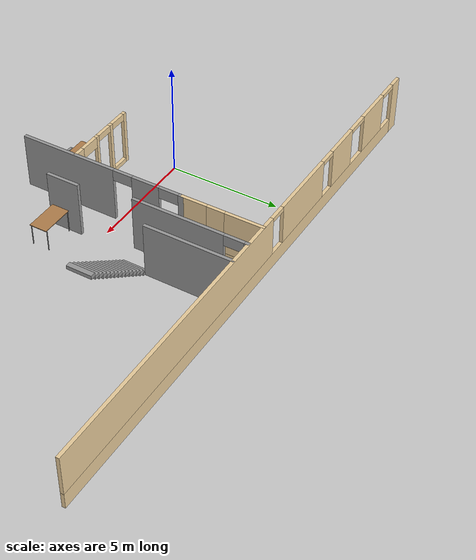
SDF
<sdf version="1.6">
 <world name="default">
  <model name="ground_plane">
   <static>1</static>
   <link name="link">
    <collision name="collision">
     <geometry><plane><normal>0 0 1</normal><size>100 100</size></plane></geometry>
     <surface>
      <contact><collide_bitmask>65535</collide_bitmask></contact>
      <friction><ode><mu>100</mu><mu2>50</mu2></ode></friction>
     </surface>
    </collision>
    <visual name="visual">
     <cast_shadows>0</cast_shadows>
     <geometry><plane><normal>0 0 1</normal><size>100 100</size></plane></geometry>
     <material>
      <script><uri>file://media/materials/scripts/gazebo.material</uri><name>Gazebo/Grey</name></script>
     </material>
    </visual>
   </link>
  </model>
  <model name="dunder_mifflin_scranton_full">
   <pose>4.5312 0.479645 0 0 -0 0</pose>
   <link name="Stairs_0">
    <visual name="Stairs_0_Visual_0">
     <pose>1.73013 1.63779 0.083333 0 -0 1.5708</pose>
     <geometry><box><size>1.12038 0.229766 0.166667</size></box></geometry>
     <material>
      <script><uri>file://media/materials/scripts/gazebo.material</uri><name>Gazebo/Grey</name></script>
      <ambient>1 1 1 1</ambient>
     </material>
     <meta><layer>0</layer></meta>
    </visual>
    <collision name="Stairs_0_Collision_0">
     <geometry><box><size>1.12038 0.229766 0.166667</size></box></geometry>
     <pose>1.73013 1.63779 0.083333 0 -0 1.5708</pose>
    </collision>
    <visual name="Stairs_0_Visual_1">
     <pose>1.9599 1.63779 0.25 0 -0 1.5708</pose>
     <geometry><box><size>1.12038 0.229766 0.166667</size></box></geometry>
     <material>
      <script><uri>file://media/materials/scripts/gazebo.material</uri><name>Gazebo/Grey</name></script>
      <ambient>1 1 1 1</ambient>
     </material>
     <meta><layer>0</layer></meta>
    </visual>
    <collision name="Stairs_0_Collision_1">
     <geometry><box><size>1.12038 0.229766 0.166667</size></box></geometry>
     <pose>1.9599 1.63779 0.25 0 -0 1.5708</pose>
    </collision>
    <visual name="Stairs_0_Visual_2">
     <pose>2.18967 1.63779 0.416667 0 -0 1.5708</pose>
     <geometry><box><size>1.12038 0.229766 0.166667</size></box></geometry>
     <material>
      <script><uri>file://media/materials/scripts/gazebo.material</uri><name>Gazebo/Grey</name></script>
      <ambient>1 1 1 1</ambient>
     </material>
     <meta><layer>0</layer></meta>
    </visual>
    <collision name="Stairs_0_Collision_2">
     <geometry><box><size>1.12038 0.229766 0.166667</size></box></geometry>
     <pose>2.18967 1.63779 0.416667 0 -0 1.5708</pose>
    </collision>
    <visual name="Stairs_0_Visual_3">
     <pose>2.41944 1.63779 0.583333 0 -0 1.5708</pose>
     <geometry><box><size>1.12038 0.229766 0.166667</size></box></geometry>
     <material>
      <script><uri>file://media/materials/scripts/gazebo.material</uri><name>Gazebo/Grey</name></script>
      <ambient>1 1 1 1</ambient>
     </material>
     <meta><layer>0</layer></meta>
    </visual>
    <collision name="Stairs_0_Collision_3">
     <geometry><box><size>1.12038 0.229766 0.166667</size></box></geometry>
     <pose>2.41944 1.63779 0.583333 0 -0 1.5708</pose>
    </collision>
    <visual name="Stairs_0_Visual_4">
     <pose>2.6492 1.63779 0.75 0 -0 1.5708</pose>
     <geometry><box><size>1.12038 0.229766 0.166667</size></box></geometry>
     <material>
      <script><uri>file://media/materials/scripts/gazebo.material</uri><name>Gazebo/Grey</name></script>
      <ambient>1 1 1 1</ambient>
     </material>
     <meta><layer>0</layer></meta>
    </visual>
    <collision name="Stairs_0_Collision_4">
     <geometry><box><size>1.12038 0.229766 0.166667</size></box></geometry>
     <pose>2.6492 1.63779 0.75 0 -0 1.5708</pose>
    </collision>
    <visual name="Stairs_0_Visual_5">
     <pose>2.87897 1.63779 0.916667 0 -0 1.5708</pose>
     <geometry><box><size>1.12038 0.229766 0.166667</size></box></geometry>
     <material>
      <script><uri>file://media/materials/scripts/gazebo.material</uri><name>Gazebo/Grey</name></script>
      <ambient>1 1 1 1</ambient>
     </material>
     <meta><layer>0</layer></meta>
    </visual>
    <collision name="Stairs_0_Collision_5">
     <geometry><box><size>1.12038 0.229766 0.166667</size></box></geometry>
     <pose>2.87897 1.63779 0.916667 0 -0 1.5708</pose>
    </collision>
    <visual name="Stairs_0_Visual_6">
     <pose>3.10873 1.63779 1.08333 0 -0 1.5708</pose>
     <geometry><box><size>1.12038 0.229766 0.166667</size></box></geometry>
     <material>
      <script><uri>file://media/materials/scripts/gazebo.material</uri><name>Gazebo/Grey</name></script>
      <ambient>1 1 1 1</ambient>
     </material>
     <meta><layer>0</layer></meta>
    </visual>
    <collision name="Stairs_0_Collision_6">
     <geometry><box><size>1.12038 0.229766 0.166667</size></box></geometry>
     <pose>3.10873 1.63779 1.08333 0 -0 1.5708</pose>
    </collision>
    <visual name="Stairs_0_Visual_7">
     <pose>3.3385 1.63779 1.25 0 -0 1.5708</pose>
     <geometry><box><size>1.12038 0.229766 0.166667</size></box></geometry>
     <material>
      <script><uri>file://media/materials/scripts/gazebo.material</uri><name>Gazebo/Grey</name></script>
      <ambient>1 1 1 1</ambient>
     </material>
     <meta><layer>0</layer></meta>
    </visual>
    <collision name="Stairs_0_Collision_7">
     <geometry><box><size>1.12038 0.229766 0.166667</size></box></geometry>
     <pose>3.3385 1.63779 1.25 0 -0 1.5708</pose>
    </collision>
    <visual name="Stairs_0_Visual_8">
     <pose>3.56827 1.63779 1.41667 0 -0 1.5708</pose>
     <geometry><box><size>1.12038 0.229766 0.166667</size></box></geometry>
     <material>
      <script><uri>file://media/materials/scripts/gazebo.material</uri><name>Gazebo/Grey</name></script>
      <ambient>1 1 1 1</ambient>
     </material>
     <meta><layer>0</layer></meta>
    </visual>
    <collision name="Stairs_0_Collision_8">
     <geometry><box><size>1.12038 0.229766 0.166667</size></box></geometry>
     <pose>3.56827 1.63779 1.41667 0 -0 1.5708</pose>
    </collision>
    <visual name="Stairs_0_Visual_9">
     <pose>3.79803 1.63779 1.58333 0 -0 1.5708</pose>
     <geometry><box><size>1.12038 0.229766 0.166667</size></box></geometry>
     <material>
      <script><uri>file://media/materials/scripts/gazebo.material</uri><name>Gazebo/Grey</name></script>
      <ambient>1 1 1 1</ambient>
     </material>
     <meta><layer>0</layer></meta>
    </visual>
    <collision name="Stairs_0_Collision_9">
     <geometry><box><size>1.12038 0.229766 0.166667</size></box></geometry>
     <pose>3.79803 1.63779 1.58333 0 -0 1.5708</pose>
    </collision>
    <visual name="Stairs_0_Visual_10">
     <pose>4.0278 1.63779 1.75 0 -0 1.5708</pose>
     <geometry><box><size>1.12038 0.229766 0.166667</size></box></geometry>
     <material>
      <script><uri>file://media/materials/scripts/gazebo.material</uri><name>Gazebo/Grey</name></script>
      <ambient>1 1 1 1</ambient>
     </material>
     <meta><layer>0</layer></meta>
    </visual>
    <collision name="Stairs_0_Collision_10">
     <geometry><box><size>1.12038 0.229766 0.166667</size></box></geometry>
     <pose>4.0278 1.63779 1.75 0 -0 1.5708</pose>
    </collision>
    <visual name="Stairs_0_Visual_11">
     <pose>4.25757 1.63779 1.91667 0 -0 1.5708</pose>
     <geometry><box><size>1.12038 0.229766 0.166667</size></box></geometry>
     <material>
      <script><uri>file://media/materials/scripts/gazebo.material</uri><name>Gazebo/Grey</name></script>
      <ambient>1 1 1 1</ambient>
     </material>
     <meta><layer>0</layer></meta>
    </visual>
    <collision name="Stairs_0_Collision_11">
     <geometry><box><size>1.12038 0.229766 0.166667</size></box></geometry>
     <pose>4.25757 1.63779 1.91667 0 -0 1.5708</pose>
    </collision>
    <visual name="Stairs_0_Visual_12">
     <pose>4.48733 1.63779 2.08333 0 -0 1.5708</pose>
     <geometry><box><size>1.12038 0.229766 0.166667</size></box></geometry>
     <material>
      <script><uri>file://media/materials/scripts/gazebo.material</uri><name>Gazebo/Grey</name></script>
      <ambient>1 1 1 1</ambient>
     </material>
     <meta><layer>0</layer></meta>
    </visual>
    <collision name="Stairs_0_Collision_12">
     <geometry><box><size>1.12038 0.229766 0.166667</size></box></geometry>
     <pose>4.48733 1.63779 2.08333 0 -0 1.5708</pose>
    </collision>
    <visual name="Stairs_0_Visual_13">
     <pose>4.7171 1.63779 2.25 0 -0 1.5708</pose>
     <geometry><box><size>1.12038 0.229766 0.166667</size></box></geometry>
     <material>
      <script><uri>file://media/materials/scripts/gazebo.material</uri><name>Gazebo/Grey</name></script>
      <ambient>1 1 1 1</ambient>
     </material>
     <meta><layer>0</layer></meta>
    </visual>
    <collision name="Stairs_0_Collision_13">
     <geometry><box><size>1.12038 0.229766 0.166667</size></box></geometry>
     <pose>4.7171 1.63779 2.25 0 -0 1.5708</pose>
    </collision>
    <visual name="Stairs_0_Visual_14">
     <pose>4.94687 1.63779 2.41667 0 -0 1.5708</pose>
     <geometry><box><size>1.12038 0.229766 0.166667</size></box></geometry>
     <material>
      <script><uri>file://media/materials/scripts/gazebo.material</uri><name>Gazebo/Grey</name></script>
      <ambient>1 1 1 1</ambient>
     </material>
     <meta><layer>0</layer></meta>
    </visual>
    <collision name="Stairs_0_Collision_14">
     <geometry><box><size>1.12038 0.229766 0.166667</size></box></geometry>
     <pose>4.94687 1.63779 2.41667 0 -0 1.5708</pose>
    </collision>
   </link>
   <link name="Wall_24">
    <pose>-0.532245 4.33925 0 0 -0 1.5708</pose>
    <visual name="Wall_24_Visual_0">
     <pose>-1.28185 0 1.25 0 -0 0</pose>
     <geometry><box><size>1.1863 0.15 2.5</size></box></geometry>
     <material>
      <script><uri>file://media/materials/scripts/gazebo.material</uri><name>Gazebo/Grey</name></script>
      <ambient>0.921569 0.807843 0.615686 1</ambient>
     </material>
     <meta><layer>0</layer></meta>
    </visual>
    <collision name="Wall_24_Collision_0">
     <geometry><box><size>1.1863 0.15 2.5</size></box></geometry>
     <pose>-1.28185 0 1.25 0 -0 0</pose>
    </collision>
    <visual name="Wall_24_Visual_1">
     <pose>0.59315 0 0.25 0 -0 0</pose>
     <geometry><box><size>2.5637 0.15 0.5</size></box></geometry>
     <material>
      <script><uri>file://media/materials/scripts/gazebo.material</uri><name>Gazebo/Grey</name></script>
      <ambient>0.921569 0.807843 0.615686 1</ambient>
     </material>
     <meta><layer>0</layer></meta>
    </visual>
    <collision name="Wall_24_Collision_1">
     <geometry><box><size>2.5637 0.15 0.5</size></box></geometry>
     <pose>0.59315 0 0.25 0 -0 0</pose>
    </collision>
    <visual name="Wall_24_Visual_2">
     <pose>0.99315 0 1.5 0 -0 0</pose>
     <geometry><box><size>1.7637 0.15 2</size></box></geometry>
     <material>
      <script><uri>file://media/materials/scripts/gazebo.material</uri><name>Gazebo/Grey</name></script>
      <ambient>0.921569 0.807843 0.615686 1</ambient>
     </material>
     <meta><layer>0</layer></meta>
    </visual>
    <collision name="Wall_24_Collision_2">
     <geometry><box><size>1.7637 0.15 2</size></box></geometry>
     <pose>0.99315 0 1.5 0 -0 0</pose>
    </collision>
    <visual name="Wall_24_Visual_3">
     <pose>-0.288699 0 1.9 0 -0 0</pose>
     <geometry><box><size>0.8 0.15 1.2</size></box></geometry>
     <material>
      <script><uri>file://media/materials/scripts/gazebo.material</uri><name>Gazebo/Grey</name></script>
      <ambient>0.921569 0.807843 0.615686 1</ambient>
     </material>
     <meta><layer>0</layer></meta>
    </visual>
    <collision name="Wall_24_Collision_3">
     <geometry><box><size>0.8 0.15 1.2</size></box></geometry>
     <pose>-0.288699 0 1.9 0 -0 0</pose>
    </collision>
   </link>
   <link name="Wall_26">
    <pose>-0.532245 -1.26075 0 0 -0 -1.5708</pose>
    <visual name="Wall_26_Visual_0">
     <pose>-3.74743 0 1.25 0 -0 0</pose>
     <geometry><box><size>0.255133 0.15 2.5</size></box></geometry>
     <material>
      <script><uri>file://media/materials/scripts/gazebo.material</uri><name>Gazebo/Grey</name></script>
      <ambient>1 1 1 1</ambient>
     </material>
     <meta><layer>0</layer></meta>
    </visual>
    <collision name="Wall_26_Collision_0">
     <geometry><box><size>0.255133 0.15 2.5</size></box></geometry>
     <pose>-3.74743 0 1.25 0 -0 0</pose>
    </collision>
    <visual name="Wall_26_Visual_1">
     <pose>-2.08102 0 1.25 0 -0 0</pose>
     <geometry><box><size>1.27769 0.15 2.5</size></box></geometry>
     <material>
      <script><uri>file://media/materials/scripts/gazebo.material</uri><name>Gazebo/Grey</name></script>
      <ambient>1 1 1 1</ambient>
     </material>
     <meta><layer>0</layer></meta>
    </visual>
    <collision name="Wall_26_Collision_1">
     <geometry><box><size>1.27769 0.15 2.5</size></box></geometry>
     <pose>-2.08102 0 1.25 0 -0 0</pose>
    </collision>
    <visual name="Wall_26_Visual_2">
     <pose>1.66641 0 1.25 0 -0 0</pose>
     <geometry><box><size>4.41718 0.15 2.5</size></box></geometry>
     <material>
      <script><uri>file://media/materials/scripts/gazebo.material</uri><name>Gazebo/Grey</name></script>
      <ambient>1 1 1 1</ambient>
     </material>
     <meta><layer>0</layer></meta>
    </visual>
    <collision name="Wall_26_Collision_2">
     <geometry><box><size>4.41718 0.15 2.5</size></box></geometry>
     <pose>1.66641 0 1.25 0 -0 0</pose>
    </collision>
    <visual name="Wall_26_Visual_3">
     <pose>-3.16987 0 2.25 0 -0 0</pose>
     <geometry><box><size>0.9 0.15 0.5</size></box></geometry>
     <material>
      <script><uri>file://media/materials/scripts/gazebo.material</uri><name>Gazebo/Grey</name></script>
      <ambient>1 1 1 1</ambient>
     </material>
     <meta><layer>0</layer></meta>
    </visual>
    <collision name="Wall_26_Collision_3">
     <geometry><box><size>0.9 0.15 0.5</size></box></geometry>
     <pose>-3.16987 0 2.25 0 -0 0</pose>
    </collision>
    <visual name="Wall_26_Visual_4">
     <pose>-0.992175 0 2.25 0 -0 0</pose>
     <geometry><box><size>0.9 0.15 0.5</size></box></geometry>
     <material>
      <script><uri>file://media/materials/scripts/gazebo.material</uri><name>Gazebo/Grey</name></script>
      <ambient>1 1 1 1</ambient>
     </material>
     <meta><layer>0</layer></meta>
    </visual>
    <collision name="Wall_26_Collision_4">
     <geometry><box><size>0.9 0.15 0.5</size></box></geometry>
     <pose>-0.992175 0 2.25 0 -0 0</pose>
    </collision>
   </link>
   <link name="Wall_29">
    <pose>-2.27831 -2.59431 0 0 -0 0</pose>
    <visual name="Wall_29_Visual_0">
     <pose>-1.66131 0 1.25 0 -0 0</pose>
     <geometry><box><size>0.177371 0.15 2.5</size></box></geometry>
     <material>
      <script><uri>file://media/materials/scripts/gazebo.material</uri><name>Gazebo/Grey</name></script>
      <ambient>0.921569 0.807843 0.615686 1</ambient>
     </material>
     <meta><layer>0</layer></meta>
    </visual>
    <collision name="Wall_29_Collision_0">
     <geometry><box><size>0.177371 0.15 2.5</size></box></geometry>
     <pose>-1.66131 0 1.25 0 -0 0</pose>
    </collision>
    <visual name="Wall_29_Visual_1">
     <pose>1.50358 0 1.25 0 -0 0</pose>
     <geometry><box><size>0.492835 0.15 2.5</size></box></geometry>
     <material>
      <script><uri>file://media/materials/scripts/gazebo.material</uri><name>Gazebo/Grey</name></script>
      <ambient>0.921569 0.807843 0.615686 1</ambient>
     </material>
     <meta><layer>0</layer></meta>
    </visual>
    <collision name="Wall_29_Collision_1">
     <geometry><box><size>0.492835 0.15 2.5</size></box></geometry>
     <pose>1.50358 0 1.25 0 -0 0</pose>
    </collision>
    <visual name="Wall_29_Visual_2">
     <pose>-0.607732 0 0.1 0 -0 0</pose>
     <geometry><box><size>1.92979 0.15 0.2</size></box></geometry>
     <material>
      <script><uri>file://media/materials/scripts/gazebo.material</uri><name>Gazebo/Grey</name></script>
      <ambient>0.921569 0.807843 0.615686 1</ambient>
     </material>
     <meta><layer>0</layer></meta>
    </visual>
    <collision name="Wall_29_Collision_2">
     <geometry><box><size>1.92979 0.15 0.2</size></box></geometry>
     <pose>-0.607732 0 0.1 0 -0 0</pose>
    </collision>
    <visual name="Wall_29_Visual_3">
     <pose>-0.685949 0 1.35 0 -0 0</pose>
     <geometry><box><size>0.17336 0.15 2.3</size></box></geometry>
     <material>
      <script><uri>file://media/materials/scripts/gazebo.material</uri><name>Gazebo/Grey</name></script>
      <ambient>0.921569 0.807843 0.615686 1</ambient>
     </material>
     <meta><layer>0</layer></meta>
    </visual>
    <collision name="Wall_29_Collision_3">
     <geometry><box><size>0.17336 0.15 2.3</size></box></geometry>
     <pose>-0.685949 0 1.35 0 -0 0</pose>
    </collision>
    <visual name="Wall_29_Visual_4">
     <pose>0.278948 0 1.35 0 -0 0</pose>
     <geometry><box><size>0.156434 0.15 2.3</size></box></geometry>
     <material>
      <script><uri>file://media/materials/scripts/gazebo.material</uri><name>Gazebo/Grey</name></script>
      <ambient>0.921569 0.807843 0.615686 1</ambient>
     </material>
     <meta><layer>0</layer></meta>
    </visual>
    <collision name="Wall_29_Collision_4">
     <geometry><box><size>0.156434 0.15 2.3</size></box></geometry>
     <pose>0.278948 0 1.35 0 -0 0</pose>
    </collision>
    <visual name="Wall_29_Visual_5">
     <pose>0.807165 0 2.25 0 -0 0</pose>
     <geometry><box><size>0.9 0.15 0.5</size></box></geometry>
     <material>
      <script><uri>file://media/materials/scripts/gazebo.material</uri><name>Gazebo/Grey</name></script>
      <ambient>0.921569 0.807843 0.615686 1</ambient>
     </material>
     <meta><layer>0</layer></meta>
    </visual>
    <collision name="Wall_29_Collision_5">
     <geometry><box><size>0.9 0.15 0.5</size></box></geometry>
     <pose>0.807165 0 2.25 0 -0 0</pose>
    </collision>
    <visual name="Wall_29_Visual_6">
     <pose>-1.17263 0 2.35 0 -0 0</pose>
     <geometry><box><size>0.8 0.15 0.3</size></box></geometry>
     <material>
      <script><uri>file://media/materials/scripts/gazebo.material</uri><name>Gazebo/Grey</name></script>
      <ambient>0.921569 0.807843 0.615686 1</ambient>
     </material>
     <meta><layer>0</layer></meta>
    </visual>
    <collision name="Wall_29_Collision_6">
     <geometry><box><size>0.8 0.15 0.3</size></box></geometry>
     <pose>-1.17263 0 2.35 0 -0 0</pose>
    </collision>
    <visual name="Wall_29_Visual_7">
     <pose>-0.199269 0 2.35 0 -0 0</pose>
     <geometry><box><size>0.8 0.15 0.3</size></box></geometry>
     <material>
      <script><uri>file://media/materials/scripts/gazebo.material</uri><name>Gazebo/Grey</name></script>
      <ambient>0.921569 0.807843 0.615686 1</ambient>
     </material>
     <meta><layer>0</layer></meta>
    </visual>
    <collision name="Wall_29_Collision_7">
     <geometry><box><size>0.8 0.15 0.3</size></box></geometry>
     <pose>-0.199269 0 2.35 0 -0 0</pose>
    </collision>
   </link>
   <link name="Wall_55">
    <collision name="Wall_55_Collision">
     <geometry><box><size>1.5 0.15 2.5</size></box></geometry>
     <pose>0 0 1.25 0 -0 0</pose>
    </collision>
    <visual name="Wall_55_Visual">
     <pose>0 0 1.25 0 -0 0</pose>
     <geometry><box><size>1.5 0.15 2.5</size></box></geometry>
     <material>
      <script><uri>file://media/materials/scripts/gazebo.material</uri><name>Gazebo/Grey</name></script>
      <ambient>1 1 1 1</ambient>
     </material>
     <meta><layer>0</layer></meta>
    </visual>
    <pose>1.01387 -2.07397 0 0 -0 -1.5708</pose>
   </link>
   <link name="Wall_6">
    <pose>0.017879 6.15 0 0 -0 0</pose>
    <visual name="Wall_6_Visual_0">
     <pose>-12.0548 0 1.25 0 -0 0</pose>
     <geometry><box><size>0.640363 0.15 2.5</size></box></geometry>
     <material>
      <script><uri>file://media/materials/scripts/gazebo.material</uri><name>Gazebo/Grey</name></script>
      <ambient>0.921569 0.807843 0.615686 1</ambient>
     </material>
     <meta><layer>0</layer></meta>
    </visual>
    <collision name="Wall_6_Collision_0">
     <geometry><box><size>0.640363 0.15 2.5</size></box></geometry>
     <pose>-12.0548 0 1.25 0 -0 0</pose>
    </collision>
    <visual name="Wall_6_Visual_1">
     <pose>0.320182 0 0.35 0 -0 0</pose>
     <geometry><box><size>24.1096 0.15 0.7</size></box></geometry>
     <material>
      <script><uri>file://media/materials/scripts/gazebo.material</uri><name>Gazebo/Grey</name></script>
      <ambient>0.921569 0.807843 0.615686 1</ambient>
     </material>
     <meta><layer>0</layer></meta>
    </visual>
    <collision name="Wall_6_Collision_1">
     <geometry><box><size>24.1096 0.15 0.7</size></box></geometry>
     <pose>0.320182 0 0.35 0 -0 0</pose>
    </collision>
    <visual name="Wall_6_Visual_2">
     <pose>-9.87682 0 1.6 0 -0 0</pose>
     <geometry><box><size>1.84964 0.15 1.8</size></box></geometry>
     <material>
      <script><uri>file://media/materials/scripts/gazebo.material</uri><name>Gazebo/Grey</name></script>
      <ambient>0.921569 0.807843 0.615686 1</ambient>
     </material>
     <meta><layer>0</layer></meta>
    </visual>
    <collision name="Wall_6_Collision_2">
     <geometry><box><size>1.84964 0.15 1.8</size></box></geometry>
     <pose>-9.87682 0 1.6 0 -0 0</pose>
    </collision>
    <visual name="Wall_6_Visual_3">
     <pose>-6.99137 0 1.6 0 -0 0</pose>
     <geometry><box><size>1.74331 0.15 1.8</size></box></geometry>
     <material>
      <script><uri>file://media/materials/scripts/gazebo.material</uri><name>Gazebo/Grey</name></script>
      <ambient>0.921569 0.807843 0.615686 1</ambient>
     </material>
     <meta><layer>0</layer></meta>
    </visual>
    <collision name="Wall_6_Collision_3">
     <geometry><box><size>1.74331 0.15 1.8</size></box></geometry>
     <pose>-6.99137 0 1.6 0 -0 0</pose>
    </collision>
    <visual name="Wall_6_Visual_4">
     <pose>-3.6528 0 1.6 0 -0 0</pose>
     <geometry><box><size>3.33383 0.15 1.8</size></box></geometry>
     <material>
      <script><uri>file://media/materials/scripts/gazebo.material</uri><name>Gazebo/Grey</name></script>
      <ambient>0.921569 0.807843 0.615686 1</ambient>
     </material>
     <meta><layer>0</layer></meta>
    </visual>
    <collision name="Wall_6_Collision_4">
     <geometry><box><size>3.33383 0.15 1.8</size></box></geometry>
     <pose>-3.6528 0 1.6 0 -0 0</pose>
    </collision>
    <visual name="Wall_6_Visual_5">
     <pose>5.59456 0 1.6 0 -0 0</pose>
     <geometry><box><size>13.5609 0.15 1.8</size></box></geometry>
     <material>
      <script><uri>file://media/materials/scripts/gazebo.material</uri><name>Gazebo/Grey</name></script>
      <ambient>0.921569 0.807843 0.615686 1</ambient>
     </material>
     <meta><layer>0</layer></meta>
    </visual>
    <collision name="Wall_6_Collision_5">
     <geometry><box><size>13.5609 0.15 1.8</size></box></geometry>
     <pose>5.59456 0 1.6 0 -0 0</pose>
    </collision>
    <visual name="Wall_6_Visual_6">
     <pose>-11.2681 0 2.4 0 -0 0</pose>
     <geometry><box><size>0.933 0.15 0.2</size></box></geometry>
     <material>
      <script><uri>file://media/materials/scripts/gazebo.material</uri><name>Gazebo/Grey</name></script>
      <ambient>0.921569 0.807843 0.615686 1</ambient>
     </material>
     <meta><layer>0</layer></meta>
    </visual>
    <collision name="Wall_6_Collision_6">
     <geometry><box><size>0.933 0.15 0.2</size></box></geometry>
     <pose>-11.2681 0 2.4 0 -0 0</pose>
    </collision>
    <visual name="Wall_6_Visual_7">
     <pose>-8.40751 0 2.4 0 -0 0</pose>
     <geometry><box><size>1.08897 0.15 0.2</size></box></geometry>
     <material>
      <script><uri>file://media/materials/scripts/gazebo.material</uri><name>Gazebo/Grey</name></script>
      <ambient>0.921569 0.807843 0.615686 1</ambient>
     </material>
     <meta><layer>0</layer></meta>
    </visual>
    <collision name="Wall_6_Collision_7">
     <geometry><box><size>1.08897 0.15 0.2</size></box></geometry>
     <pose>-8.40751 0 2.4 0 -0 0</pose>
    </collision>
    <visual name="Wall_6_Visual_8">
     <pose>-5.71972 0 2.4 0 -0 0</pose>
     <geometry><box><size>0.8 0.15 0.2</size></box></geometry>
     <material>
      <script><uri>file://media/materials/scripts/gazebo.material</uri><name>Gazebo/Grey</name></script>
      <ambient>0.921569 0.807843 0.615686 1</ambient>
     </material>
     <meta><layer>0</layer></meta>
    </visual>
    <collision name="Wall_6_Collision_8">
     <geometry><box><size>0.8 0.15 0.2</size></box></geometry>
     <pose>-5.71972 0 2.4 0 -0 0</pose>
    </collision>
    <visual name="Wall_6_Visual_9">
     <pose>-1.58589 0 2.4 0 -0 0</pose>
     <geometry><box><size>0.8 0.15 0.2</size></box></geometry>
     <material>
      <script><uri>file://media/materials/scripts/gazebo.material</uri><name>Gazebo/Grey</name></script>
      <ambient>0.921569 0.807843 0.615686 1</ambient>
     </material>
     <meta><layer>0</layer></meta>
    </visual>
    <collision name="Wall_6_Collision_9">
     <geometry><box><size>0.8 0.15 0.2</size></box></geometry>
     <pose>-1.58589 0 2.4 0 -0 0</pose>
    </collision>
   </link>
   <link name="Wall_77">
    <pose>0.584717 3.57027 0 0 -0 1.5708</pose>
    <visual name="Wall_77_Visual_0">
     <pose>-0.554466 0 1.25 0 -0 0</pose>
     <geometry><box><size>4.14107 0.15 2.5</size></box></geometry>
     <material>
      <script><uri>file://media/materials/scripts/gazebo.material</uri><name>Gazebo/Grey</name></script>
      <ambient>1 1 1 1</ambient>
     </material>
     <meta><layer>0</layer></meta>
    </visual>
    <collision name="Wall_77_Collision_0">
     <geometry><box><size>4.14107 0.15 2.5</size></box></geometry>
     <pose>-0.554466 0 1.25 0 -0 0</pose>
    </collision>
    <visual name="Wall_77_Visual_1">
     <pose>2.52053 0 1.25 0 -0 0</pose>
     <geometry><box><size>0.208931 0.15 2.5</size></box></geometry>
     <material>
      <script><uri>file://media/materials/scripts/gazebo.material</uri><name>Gazebo/Grey</name></script>
      <ambient>1 1 1 1</ambient>
     </material>
     <meta><layer>0</layer></meta>
    </visual>
    <collision name="Wall_77_Collision_1">
     <geometry><box><size>0.208931 0.15 2.5</size></box></geometry>
     <pose>2.52053 0 1.25 0 -0 0</pose>
    </collision>
    <visual name="Wall_77_Visual_2">
     <pose>1.96607 0 2.25 0 -0 0</pose>
     <geometry><box><size>0.9 0.15 0.5</size></box></geometry>
     <material>
      <script><uri>file://media/materials/scripts/gazebo.material</uri><name>Gazebo/Grey</name></script>
      <ambient>1 1 1 1</ambient>
     </material>
     <meta><layer>0</layer></meta>
    </visual>
    <collision name="Wall_77_Collision_2">
     <geometry><box><size>0.9 0.15 0.5</size></box></geometry>
     <pose>1.96607 0 2.25 0 -0 0</pose>
    </collision>
   </link>
   <link name="Wall_81">
    <collision name="Wall_81_Collision">
     <geometry><box><size>4 0.15 2.5</size></box></geometry>
     <pose>0 0 1.25 0 -0 0</pose>
    </collision>
    <visual name="Wall_81_Visual">
     <pose>0 0 1.25 0 -0 0</pose>
     <geometry><box><size>4 0.15 2.5</size></box></geometry>
     <material>
      <script><uri>file://media/materials/scripts/gazebo.material</uri><name>Gazebo/Grey</name></script>
      <ambient>1 1 1 1</ambient>
     </material>
     <meta><layer>0</layer></meta>
    </visual>
    <pose>1.68322 4.20127 0 0 -0 -1.5708</pose>
   </link>
   <static>1</static>
  </model>
  <model name="table_10">
   <static>1</static>
   <link name="link">
    <collision name="surface">
     <pose>0 0 1 0 -0 0</pose>
     <geometry><box><size>1.5 0.8 0.03</size></box></geometry>
     <surface><friction><ode><mu>0.6</mu><mu2>0.6</mu2></ode></friction></surface>
    </collision>
    <visual name="visual1">
     <pose>0 0 1 0 -0 0</pose>
     <geometry><box><size>1.5 0.8 0.03</size></box></geometry>
     <material>
      <script><uri>file://media/materials/scripts/gazebo.material</uri><name>Gazebo/Wood</name></script>
     </material>
    </visual>
    <collision name="front_left_leg">
     <pose>0.68 0.38 0.5 0 -0 0</pose>
     <geometry><cylinder><radius>0.02</radius><length>1</length></cylinder></geometry>
    </collision>
    <visual name="front_left_leg">
     <pose>0.68 0.38 0.5 0 -0 0</pose>
     <geometry><cylinder><radius>0.02</radius><length>1</length></cylinder></geometry>
     <material>
      <script><uri>file://media/materials/scripts/gazebo.material</uri><name>Gazebo/Grey</name></script>
     </material>
    </visual>
    <collision name="front_right_leg">
     <pose>0.68 -0.38 0.5 0 -0 0</pose>
     <geometry><cylinder><radius>0.02</radius><length>1</length></cylinder></geometry>
    </collision>
    <visual name="front_right_leg">
     <pose>0.68 -0.38 0.5 0 -0 0</pose>
     <geometry><cylinder><radius>0.02</radius><length>1</length></cylinder></geometry>
     <material>
      <script><uri>file://media/materials/scripts/gazebo.material</uri><name>Gazebo/Grey</name></script>
     </material>
    </visual>
    <collision name="back_right_leg">
     <pose>-0.68 -0.38 0.5 0 -0 0</pose>
     <geometry><cylinder><radius>0.02</radius><length>1</length></cylinder></geometry>
    </collision>
    <visual name="back_right_leg">
     <pose>-0.68 -0.38 0.5 0 -0 0</pose>
     <geometry><cylinder><radius>0.02</radius><length>1</length></cylinder></geometry>
     <material>
      <script><uri>file://media/materials/scripts/gazebo.material</uri><name>Gazebo/Grey</name></script>
     </material>
    </visual>
    <collision name="back_left_leg">
     <pose>-0.68 0.38 0.5 0 -0 0</pose>
     <geometry><cylinder><radius>0.02</radius><length>1</length></cylinder></geometry>
    </collision>
    <visual name="back_left_leg">
     <pose>-0.68 0.38 0.5 0 -0 0</pose>
     <geometry><cylinder><radius>0.02</radius><length>1</length></cylinder></geometry>
     <material>
      <script><uri>file://media/materials/scripts/gazebo.material</uri><name>Gazebo/Grey</name></script>
     </material>
    </visual>
   </link>
   <pose>2.27591 -3.32613 0 0 -0 0</pose>
  </model>
  <model name="chair_10">
   <link name="link_0">
    <inertial>
     <mass>1</mass>
     <inertia><ixx>0.145833</ixx><ixy>0</ixy><ixz>0</ixz><iyy>0.145833</iyy><iyz>0</iyz><izz>0.125</izz></inertia>
    </inertial>
    <pose>-0.23 -0.19667 -0.280001 0 -0 0</pose>
    <visual name="visual">
     <geometry><cylinder><radius>0.02</radius><length>0.5</length></cylinder></geometry>
     <material>
      <lighting>1</lighting>
      <script><uri>file://media/materials/scripts/gazebo.material</uri><name>Gazebo/Grey</name></script>
      <shader type="vertex"><normal_map>__default__</normal_map></shader>
      <ambient>0.3 0.3 0.3 1</ambient>
      <diffuse>0.7 0.7 0.7 1</diffuse>
      <specular>0.01 0.01 0.01 1</specular>
      <emissive>0 0 0 1</emissive>
     </material>
    </visual>
    <collision name="collision">
     <geometry><cylinder><radius>0.02</radius><length>0.5</length></cylinder></geometry>
     <surface>
      <friction>
       <ode><mu>1</mu><mu2>1</mu2><fdir1>0 0 0</fdir1><slip1>0</slip1><slip2>0</slip2></ode>
       <torsional>
        <coefficient>1</coefficient>
        <patch_radius>0</patch_radius>
        <surface_radius>0</surface_radius>
        <use_patch_radius>1</use_patch_radius>
        <ode><slip>0</slip></ode>
       </torsional>
      </friction>
      <bounce><restitution_coefficient>0</restitution_coefficient><threshold>1e+06</threshold></bounce>
      <contact>
       <collide_without_contact>0</collide_without_contact>
       <collide_without_contact_bitmask>1</collide_without_contact_bitmask>
       <collide_bitmask>1</collide_bitmask>
       <ode>
        <soft_cfm>0</soft_cfm>
        <soft_erp>0.2</soft_erp>
        <kp>1e+13</kp>
        <kd>1</kd>
        <max_vel>0.01</max_vel>
        <min_depth>0</min_depth>
       </ode>
       <bullet>
        <split_impulse>1</split_impulse>
        <split_impulse_penetration_threshold>-0.01</split_impulse_penetration_threshold>
        <soft_cfm>0</soft_cfm>
        <soft_erp>0.2</soft_erp>
        <kp>1e+13</kp>
        <kd>1</kd>
       </bullet>
      </contact>
     </surface>
    </collision>
   </link>
   <link name="link_0_clone">
    <inertial>
     <mass>1</mass>
     <inertia><ixx>0.145833</ixx><ixy>0</ixy><ixz>0</ixz><iyy>0.145833</iyy><iyz>0</iyz><izz>0.125</izz></inertia>
    </inertial>
    <pose>0.23 -0.19667 -0.280001 0 -0 0</pose>
    <visual name="visual">
     <geometry><cylinder><radius>0.02</radius><length>0.5</length></cylinder></geometry>
     <material>
      <lighting>1</lighting>
      <script><uri>file://media/materials/scripts/gazebo.material</uri><name>Gazebo/Grey</name></script>
      <shader type="vertex"><normal_map>__default__</normal_map></shader>
      <ambient>0.3 0.3 0.3 1</ambient>
      <diffuse>0.7 0.7 0.7 1</diffuse>
      <specular>0.01 0.01 0.01 1</specular>
      <emissive>0 0 0 1</emissive>
     </material>
    </visual>
    <collision name="collision">
     <geometry><cylinder><radius>0.02</radius><length>0.5</length></cylinder></geometry>
     <surface>
      <friction>
       <ode><mu>1</mu><mu2>1</mu2><fdir1>0 0 0</fdir1><slip1>0</slip1><slip2>0</slip2></ode>
       <torsional>
        <coefficient>1</coefficient>
        <patch_radius>0</patch_radius>
        <surface_radius>0</surface_radius>
        <use_patch_radius>1</use_patch_radius>
        <ode><slip>0</slip></ode>
       </torsional>
      </friction>
      <bounce><restitution_coefficient>0</restitution_coefficient><threshold>1e+06</threshold></bounce>
      <contact>
       <collide_without_contact>0</collide_without_contact>
       <collide_without_contact_bitmask>1</collide_without_contact_bitmask>
       <collide_bitmask>1</collide_bitmask>
       <ode>
        <soft_cfm>0</soft_cfm>
        <soft_erp>0.2</soft_erp>
        <kp>1e+13</kp>
        <kd>1</kd>
        <max_vel>0.01</max_vel>
        <min_depth>0</min_depth>
       </ode>
       <bullet>
        <split_impulse>1</split_impulse>
        <split_impulse_penetration_threshold>-0.01</split_impulse_penetration_threshold>
        <soft_cfm>0</soft_cfm>
        <soft_erp>0.2</soft_erp>
        <kp>1e+13</kp>
        <kd>1</kd>
       </bullet>
      </contact>
     </surface>
    </collision>
   </link>
   <link name="link_0_clone_0">
    <inertial>
     <mass>1</mass>
     <inertia><ixx>0.145833</ixx><ixy>0</ixy><ixz>0</ixz><iyy>0.145833</iyy><iyz>0</iyz><izz>0.125</izz></inertia>
    </inertial>
    <pose>0.23 0.26333 -0.280001 0 -0 0</pose>
    <visual name="visual">
     <geometry><cylinder><radius>0.02</radius><length>0.5</length></cylinder></geometry>
     <material>
      <lighting>1</lighting>
      <script><uri>file://media/materials/scripts/gazebo.material</uri><name>Gazebo/Grey</name></script>
      <shader type="vertex"><normal_map>__default__</normal_map></shader>
      <ambient>0.3 0.3 0.3 1</ambient>
      <diffuse>0.7 0.7 0.7 1</diffuse>
      <specular>0.01 0.01 0.01 1</specular>
      <emissive>0 0 0 1</emissive>
     </material>
    </visual>
    <collision name="collision">
     <geometry><cylinder><radius>0.02</radius><length>0.5</length></cylinder></geometry>
     <surface>
      <friction>
       <ode><mu>1</mu><mu2>1</mu2><fdir1>0 0 0</fdir1><slip1>0</slip1><slip2>0</slip2></ode>
       <torsional>
        <coefficient>1</coefficient>
        <patch_radius>0</patch_radius>
        <surface_radius>0</surface_radius>
        <use_patch_radius>1</use_patch_radius>
        <ode><slip>0</slip></ode>
       </torsional>
      </friction>
      <bounce><restitution_coefficient>0</restitution_coefficient><threshold>1e+06</threshold></bounce>
      <contact>
       <collide_without_contact>0</collide_without_contact>
       <collide_without_contact_bitmask>1</collide_without_contact_bitmask>
       <collide_bitmask>1</collide_bitmask>
       <ode>
        <soft_cfm>0</soft_cfm>
        <soft_erp>0.2</soft_erp>
        <kp>1e+13</kp>
        <kd>1</kd>
        <max_vel>0.01</max_vel>
        <min_depth>0</min_depth>
       </ode>
       <bullet>
        <split_impulse>1</split_impulse>
        <split_impulse_penetration_threshold>-0.01</split_impulse_penetration_threshold>
        <soft_cfm>0</soft_cfm>
        <soft_erp>0.2</soft_erp>
        <kp>1e+13</kp>
        <kd>1</kd>
       </bullet>
      </contact>
     </surface>
    </collision>
   </link>
   <link name="link_0_clone_1">
    <inertial>
     <mass>1</mass>
     <inertia><ixx>0.145833</ixx><ixy>0</ixy><ixz>0</ixz><iyy>0.145833</iyy><iyz>0</iyz><izz>0.125</izz></inertia>
    </inertial>
    <pose>-0.23 0.26333 -0.280001 0 -0 0</pose>
    <visual name="visual">
     <geometry><cylinder><radius>0.02</radius><length>0.5</length></cylinder></geometry>
     <material>
      <lighting>1</lighting>
      <script><uri>file://media/materials/scripts/gazebo.material</uri><name>Gazebo/Grey</name></script>
      <shader type="vertex"><normal_map>__default__</normal_map></shader>
      <ambient>0.3 0.3 0.3 1</ambient>
      <diffuse>0.7 0.7 0.7 1</diffuse>
      <specular>0.01 0.01 0.01 1</specular>
      <emissive>0 0 0 1</emissive>
     </material>
    </visual>
    <collision name="collision">
     <geometry><cylinder><radius>0.02</radius><length>0.5</length></cylinder></geometry>
     <surface>
      <friction>
       <ode><mu>1</mu><mu2>1</mu2><fdir1>0 0 0</fdir1><slip1>0</slip1><slip2>0</slip2></ode>
       <torsional>
        <coefficient>1</coefficient>
        <patch_radius>0</patch_radius>
        <surface_radius>0</surface_radius>
        <use_patch_radius>1</use_patch_radius>
        <ode><slip>0</slip></ode>
       </torsional>
      </friction>
      <bounce><restitution_coefficient>0</restitution_coefficient><threshold>1e+06</threshold></bounce>
      <contact>
       <collide_without_contact>0</collide_without_contact>
       <collide_without_contact_bitmask>1</collide_without_contact_bitmask>
       <collide_bitmask>1</collide_bitmask>
       <ode>
        <soft_cfm>0</soft_cfm>
        <soft_erp>0.2</soft_erp>
        <kp>1e+13</kp>
        <kd>1</kd>
        <max_vel>0.01</max_vel>
        <min_depth>0</min_depth>
       </ode>
       <bullet>
        <split_impulse>1</split_impulse>
        <split_impulse_penetration_threshold>-0.01</split_impulse_penetration_threshold>
        <soft_cfm>0</soft_cfm>
        <soft_erp>0.2</soft_erp>
        <kp>1e+13</kp>
        <kd>1</kd>
       </bullet>
      </contact>
     </surface>
    </collision>
   </link>
   <link name="link_2">
    <inertial>
     <mass>1</mass>
     <inertia>
      <ixx>0.166667</ixx>
      <ixy>0</ixy>
      <ixz>0</ixz>
      <iyy>0.166667</iyy>
      <iyz>0</iyz>
      <izz>0.166667</izz>
     </inertia>
    </inertial>
    <pose>0 0.03333 0.019999 0 -0 0</pose>
    <visual name="visual">
     <geometry><box><size>0.5 0.5 0.1</size></box></geometry>
     <material>
      <lighting>1</lighting>
      <script><uri>file://media/materials/scripts/gazebo.material</uri><name>Gazebo/Grey</name></script>
      <shader type="vertex"><normal_map>__default__</normal_map></shader>
      <ambient>0.3 0.3 0.3 1</ambient>
      <diffuse>0.7 0.7 0.7 1</diffuse>
      <specular>0.01 0.01 0.01 1</specular>
      <emissive>0 0 0 1</emissive>
     </material>
    </visual>
    <collision name="collision">
     <geometry><box><size>0.5 0.5 0.1</size></box></geometry>
     <surface>
      <friction>
       <ode><mu>1</mu><mu2>1</mu2><fdir1>0 0 0</fdir1><slip1>0</slip1><slip2>0</slip2></ode>
       <torsional>
        <coefficient>1</coefficient>
        <patch_radius>0</patch_radius>
        <surface_radius>0</surface_radius>
        <use_patch_radius>1</use_patch_radius>
        <ode><slip>0</slip></ode>
       </torsional>
      </friction>
      <bounce><restitution_coefficient>0</restitution_coefficient><threshold>1e+06</threshold></bounce>
      <contact>
       <collide_without_contact>0</collide_without_contact>
       <collide_without_contact_bitmask>1</collide_without_contact_bitmask>
       <collide_bitmask>1</collide_bitmask>
       <ode>
        <soft_cfm>0</soft_cfm>
        <soft_erp>0.2</soft_erp>
        <kp>1e+13</kp>
        <kd>1</kd>
        <max_vel>0.01</max_vel>
        <min_depth>0</min_depth>
       </ode>
       <bullet>
        <split_impulse>1</split_impulse>
        <split_impulse_penetration_threshold>-0.01</split_impulse_penetration_threshold>
        <soft_cfm>0</soft_cfm>
        <soft_erp>0.2</soft_erp>
        <kp>1e+13</kp>
        <kd>1</kd>
       </bullet>
      </contact>
     </surface>
    </collision>
   </link>
   <link name="link_2_clone">
    <inertial>
     <mass>1</mass>
     <inertia>
      <ixx>0.166667</ixx>
      <ixy>0</ixy>
      <ixz>0</ixz>
      <iyy>0.166667</iyy>
      <iyz>0</iyz>
      <izz>0.166667</izz>
     </inertia>
    </inertial>
    <pose>0 -0.166646 0.220004 1.5707 -0 0</pose>
    <visual name="visual">
     <geometry><box><size>0.5 0.5 0.1</size></box></geometry>
     <material>
      <lighting>1</lighting>
      <script><uri>file://media/materials/scripts/gazebo.material</uri><name>Gazebo/Grey</name></script>
      <shader type="vertex"><normal_map>__default__</normal_map></shader>
      <ambient>0.3 0.3 0.3 1</ambient>
      <diffuse>0.7 0.7 0.7 1</diffuse>
      <specular>0.01 0.01 0.01 1</specular>
      <emissive>0 0 0 1</emissive>
     </material>
    </visual>
    <collision name="collision">
     <geometry><box><size>0.5 0.5 0.1</size></box></geometry>
     <surface>
      <friction>
       <ode><mu>1</mu><mu2>1</mu2><fdir1>0 0 0</fdir1><slip1>0</slip1><slip2>0</slip2></ode>
       <torsional>
        <coefficient>1</coefficient>
        <patch_radius>0</patch_radius>
        <surface_radius>0</surface_radius>
        <use_patch_radius>1</use_patch_radius>
        <ode><slip>0</slip></ode>
       </torsional>
      </friction>
      <bounce><restitution_coefficient>0</restitution_coefficient><threshold>1e+06</threshold></bounce>
      <contact>
       <collide_without_contact>0</collide_without_contact>
       <collide_without_contact_bitmask>1</collide_without_contact_bitmask>
       <collide_bitmask>1</collide_bitmask>
       <ode>
        <soft_cfm>0</soft_cfm>
        <soft_erp>0.2</soft_erp>
        <kp>1e+13</kp>
        <kd>1</kd>
        <max_vel>0.01</max_vel>
        <min_depth>0</min_depth>
       </ode>
       <bullet>
        <split_impulse>1</split_impulse>
        <split_impulse_penetration_threshold>-0.01</split_impulse_penetration_threshold>
        <soft_cfm>0</soft_cfm>
        <soft_erp>0.2</soft_erp>
        <kp>1e+13</kp>
        <kd>1</kd>
       </bullet>
      </contact>
     </surface>
    </collision>
   </link>
   <joint name="link_0_clone_JOINT_2" type="fixed">
    <parent>link_2</parent>
    <child>link_0_clone</child>
    <physics>
     <ode><limit><cfm>0</cfm><erp>0.2</erp></limit><suspension><cfm>0</cfm><erp>0.2</erp></suspension></ode>
    </physics>
   </joint>
   <joint name="link_2_JOINT_1" type="fixed">
    <parent>link_2</parent>
    <child>link_0</child>
    <physics>
     <ode><limit><cfm>0</cfm><erp>0.2</erp></limit><suspension><cfm>0</cfm><erp>0.2</erp></suspension></ode>
    </physics>
   </joint>
   <joint name="link_2_JOINT_3" type="fixed">
    <parent>link_2</parent>
    <child>link_0_clone_0</child>
    <physics>
     <ode><limit><cfm>0</cfm><erp>0.2</erp></limit><suspension><cfm>0</cfm><erp>0.2</erp></suspension></ode>
    </physics>
   </joint>
   <joint name="link_2_JOINT_4" type="fixed">
    <parent>link_2</parent>
    <child>link_0_clone_1</child>
    <physics>
     <ode><limit><cfm>0</cfm><erp>0.2</erp></limit><suspension><cfm>0</cfm><erp>0.2</erp></suspension></ode>
    </physics>
   </joint>
   <joint name="link_2_JOINT_5" type="fixed">
    <parent>link_2</parent>
    <child>link_2_clone</child>
    <physics>
     <ode><limit><cfm>0</cfm><erp>0.2</erp></limit><suspension><cfm>0</cfm><erp>0.2</erp></suspension></ode>
    </physics>
   </joint>
   <static>0</static>
   <pose>2.35691 -3.66073 0.529996 0 -0 0.021457</pose>
  </model>
  <model name="table_14">
   <static>1</static>
   <link name="link">
    <collision name="surface">
     <pose>0 0 1 0 -0 0</pose>
     <geometry><box><size>1.5 0.8 0.03</size></box></geometry>
     <surface><friction><ode><mu>0.6</mu><mu2>0.6</mu2></ode></friction></surface>
    </collision>
    <visual name="visual1">
     <pose>0 0 1 0 -0 0</pose>
     <geometry><box><size>1.5 0.8 0.03</size></box></geometry>
     <material>
      <script><uri>file://media/materials/scripts/gazebo.material</uri><name>Gazebo/Wood</name></script>
     </material>
    </visual>
    <collision name="front_left_leg">
     <pose>0.68 0.38 0.5 0 -0 0</pose>
     <geometry><cylinder><radius>0.02</radius><length>1</length></cylinder></geometry>
    </collision>
    <visual name="front_left_leg">
     <pose>0.68 0.38 0.5 0 -0 0</pose>
     <geometry><cylinder><radius>0.02</radius><length>1</length></cylinder></geometry>
     <material>
      <script><uri>file://media/materials/scripts/gazebo.material</uri><name>Gazebo/Grey</name></script>
     </material>
    </visual>
    <collision name="front_right_leg">
     <pose>0.68 -0.38 0.5 0 -0 0</pose>
     <geometry><cylinder><radius>0.02</radius><length>1</length></cylinder></geometry>
    </collision>
    <visual name="front_right_leg">
     <pose>0.68 -0.38 0.5 0 -0 0</pose>
     <geometry><cylinder><radius>0.02</radius><length>1</length></cylinder></geometry>
     <material>
      <script><uri>file://media/materials/scripts/gazebo.material</uri><name>Gazebo/Grey</name></script>
     </material>
    </visual>
    <collision name="back_right_leg">
     <pose>-0.68 -0.38 0.5 0 -0 0</pose>
     <geometry><cylinder><radius>0.02</radius><length>1</length></cylinder></geometry>
    </collision>
    <visual name="back_right_leg">
     <pose>-0.68 -0.38 0.5 0 -0 0</pose>
     <geometry><cylinder><radius>0.02</radius><length>1</length></cylinder></geometry>
     <material>
      <script><uri>file://media/materials/scripts/gazebo.material</uri><name>Gazebo/Grey</name></script>
     </material>
    </visual>
    <collision name="back_left_leg">
     <pose>-0.68 0.38 0.5 0 -0 0</pose>
     <geometry><cylinder><radius>0.02</radius><length>1</length></cylinder></geometry>
    </collision>
    <visual name="back_left_leg">
     <pose>-0.68 0.38 0.5 0 -0 0</pose>
     <geometry><cylinder><radius>0.02</radius><length>1</length></cylinder></geometry>
     <material>
      <script><uri>file://media/materials/scripts/gazebo.material</uri><name>Gazebo/Grey</name></script>
     </material>
    </visual>
   </link>
   <pose>6.37316 -1.79082 0 0 -0 0</pose>
  </model>
 </world>
</sdf>
